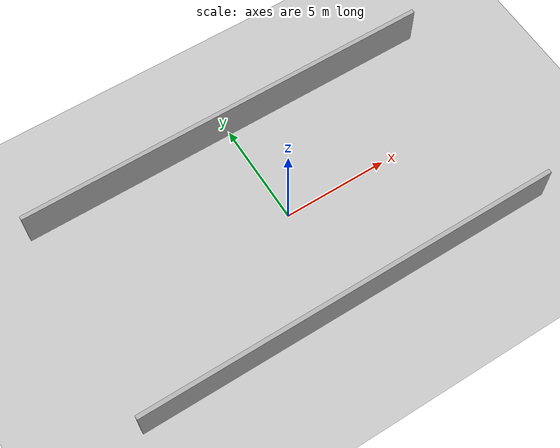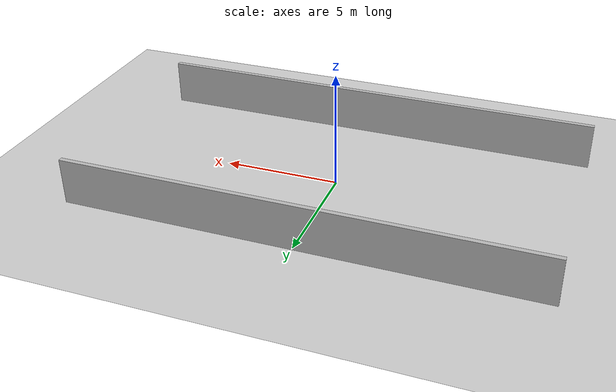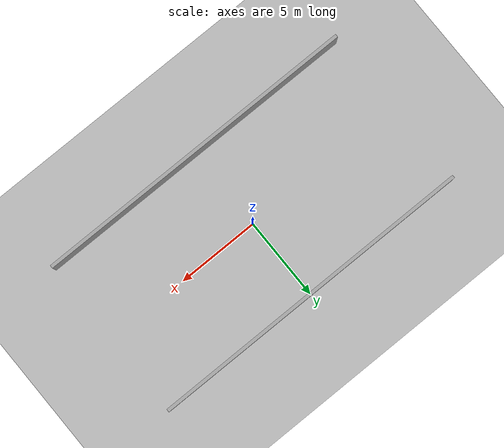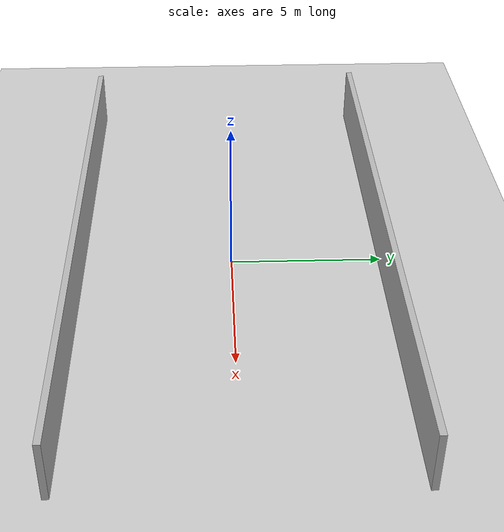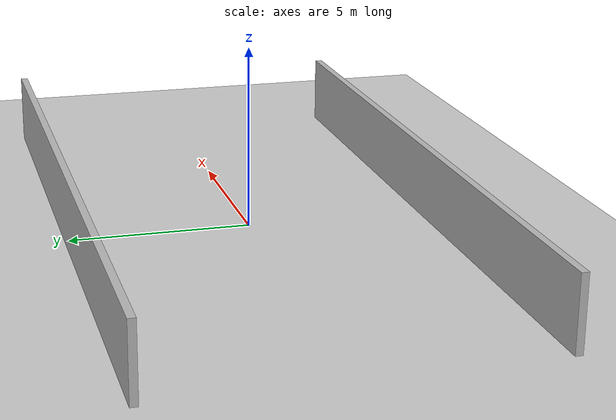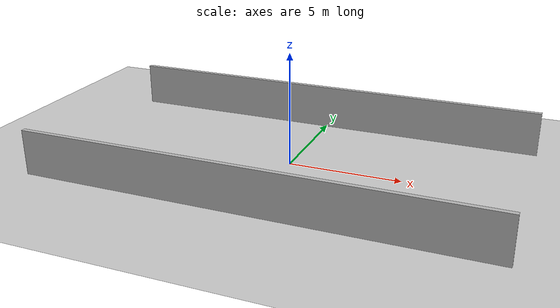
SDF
<?xml version="1.0" ?>
<sdf version="1.6">
  <world name="warehouse">

    <include>
      <uri>model://sun</uri>
    </include>

    <include>
      <uri>model://ground_plane</uri>
    </include>

    <!-- Warehouse walls -->
    <model name="wall_1">
      <static>true</static>
      <link name="link">
        <collision name="collision">
          <geometry>
            <box><size>20 0.2 2</size></box>
          </geometry>
        </collision>
        <visual name="visual">
          <geometry>
            <box><size>20 0.2 2</size></box>
          </geometry>
        </visual>
      </link>
      <pose>0 5 1 0 0 0</pose>
    </model>

    <model name="wall_2">
      <static>true</static>
      <link name="link">
        <collision name="collision">
          <geometry>
            <box><size>20 0.2 2</size></box>
          </geometry>
        </collision>
        <visual name="visual">
          <geometry>
            <box><size>20 0.2 2</size></box>
          </geometry>
        </visual>
      </link>
      <pose>0 -5 1 0 0 0</pose>
    </model>

  </world>
</sdf>
